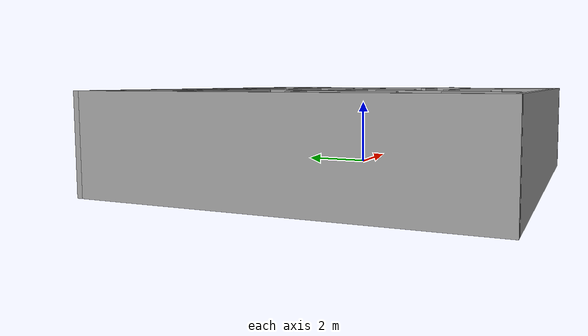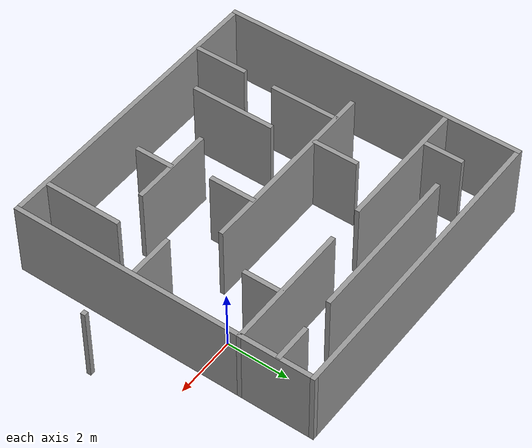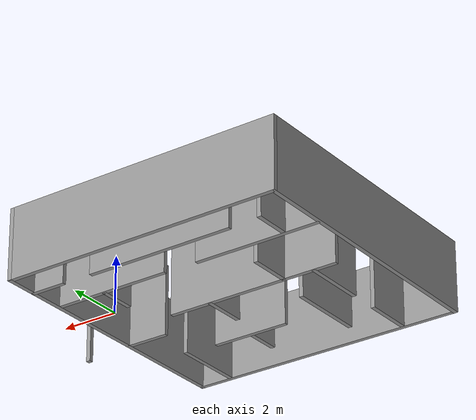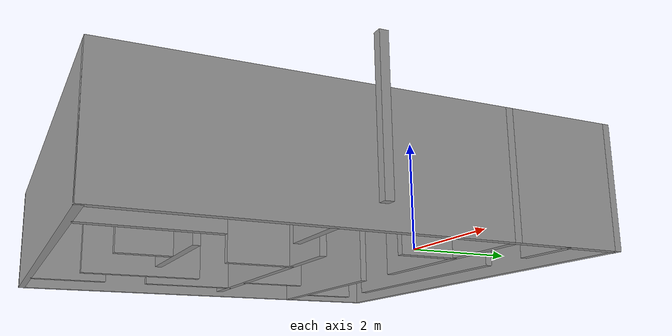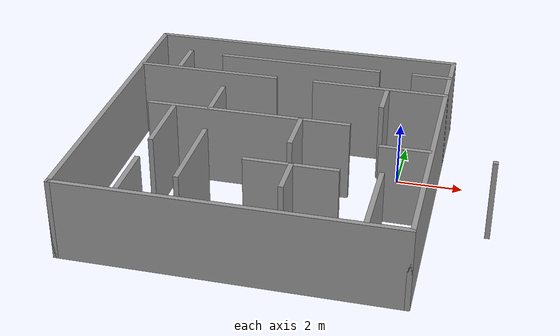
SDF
<?xml version='1.0'?>
<sdf version='1.6'>
  <model name='laberint'>
    <pose frame=''>-2.86364 -1.2706 0 0 -0 0</pose>
    <link name='Wall_15'>
      <collision name='Wall_15_Collision'>
        <geometry>
          <box>
            <size>0.15 0.15 2.5</size>
          </box>
        </geometry>
        <pose frame=''>0 0 1.25 0 -0 0</pose>
      </collision>
      <visual name='Wall_15_Visual'>
        <pose frame=''>0 0 1.25 0 -0 0</pose>
        <geometry>
          <box>
            <size>0.15 0.15 2.5</size>
          </box>
        </geometry>
        <material>
          <script>
            <uri>file://media/materials/scripts/gazebo.material</uri>
            <name>Gazebo/Grey</name>
          </script>
          <ambient>1 1 1 1</ambient>
        </material>
      </visual>
      <pose frame=''>5.81214 -1.10128 0 0 -0 0</pose>
    </link>
    <link name='Wall_17'>
      <collision name='Wall_17_Collision'>
        <geometry>
          <box>
            <size>2.5 0.15 2.5</size>
          </box>
        </geometry>
        <pose frame=''>0 0 1.25 0 -0 0</pose>
      </collision>
      <visual name='Wall_17_Visual'>
        <pose frame=''>0 0 1.25 0 -0 0</pose>
        <geometry>
          <box>
            <size>2.5 0.15 2.5</size>
          </box>
        </geometry>
        <material>
          <script>
            <uri>file://media/materials/scripts/gazebo.material</uri>
            <name>Gazebo/Grey</name>
          </script>
          <ambient>1 1 1 1</ambient>
        </material>
      </visual>
      <pose frame=''>2.84489 -3.62224 0 0 0 -1.5708</pose>
    </link>
    <link name='Wall_19'>
      <collision name='Wall_19_Collision'>
        <geometry>
          <box>
            <size>1.5 0.15 2.5</size>
          </box>
        </geometry>
        <pose frame=''>0 0 1.25 0 -0 0</pose>
      </collision>
      <visual name='Wall_19_Visual'>
        <pose frame=''>0 0 1.25 0 -0 0</pose>
        <geometry>
          <box>
            <size>1.5 0.15 2.5</size>
          </box>
        </geometry>
        <material>
          <script>
            <uri>file://media/materials/scripts/gazebo.material</uri>
            <name>Gazebo/Grey</name>
          </script>
          <ambient>1 1 1 1</ambient>
        </material>
      </visual>
      <pose frame=''>3.27726 -0.93979 0 0 -0 3.14159</pose>
    </link>
    <link name='Wall_22'>
      <collision name='Wall_22_Collision'>
        <geometry>
          <box>
            <size>10 0.15 2.5</size>
          </box>
        </geometry>
        <pose frame=''>0 0 1.25 0 -0 0</pose>
      </collision>
      <visual name='Wall_22_Visual'>
        <pose frame=''>0 0 1.25 0 -0 0</pose>
        <geometry>
          <box>
            <size>10 0.15 2.5</size>
          </box>
        </geometry>
        <material>
          <script>
            <uri>file://media/materials/scripts/gazebo.material</uri>
            <name>Gazebo/Grey</name>
          </script>
          <ambient>1 1 1 1</ambient>
        </material>
      </visual>
      <pose frame=''>-5.81214 0 0 0 0 -1.5708</pose>
    </link>
    <link name='Wall_23'>
      <collision name='Wall_23_Collision'>
        <geometry>
          <box>
            <size>10 0.15 2.5</size>
          </box>
        </geometry>
        <pose frame=''>0 0 1.25 0 -0 0</pose>
      </collision>
      <visual name='Wall_23_Visual'>
        <pose frame=''>0 0 1.25 0 -0 0</pose>
        <geometry>
          <box>
            <size>10 0.15 2.5</size>
          </box>
        </geometry>
        <material>
          <script>
            <uri>file://media/materials/scripts/gazebo.material</uri>
            <name>Gazebo/Grey</name>
          </script>
          <ambient>1 1 1 1</ambient>
        </material>
      </visual>
      <pose frame=''>-0.887143 -4.925 0 0 -0 0</pose>
    </link>
    <link name='Wall_24'>
      <collision name='Wall_24_Collision'>
        <geometry>
          <box>
            <size>10 0.15 2.5</size>
          </box>
        </geometry>
        <pose frame=''>0 0 1.25 0 -0 0</pose>
      </collision>
      <visual name='Wall_24_Visual'>
        <pose frame=''>0 0 1.25 0 -0 0</pose>
        <geometry>
          <box>
            <size>10 0.15 2.5</size>
          </box>
        </geometry>
        <material>
          <script>
            <uri>file://media/materials/scripts/gazebo.material</uri>
            <name>Gazebo/Grey</name>
          </script>
          <ambient>1 1 1 1</ambient>
        </material>
      </visual>
      <pose frame=''>4.03786 0 0 0 -0 1.5708</pose>
    </link>
    <link name='Wall_25'>
      <collision name='Wall_25_Collision'>
        <geometry>
          <box>
            <size>10 0.15 2.5</size>
          </box>
        </geometry>
        <pose frame=''>0 0 1.25 0 -0 0</pose>
      </collision>
      <visual name='Wall_25_Visual'>
        <pose frame=''>0 0 1.25 0 -0 0</pose>
        <geometry>
          <box>
            <size>10 0.15 2.5</size>
          </box>
        </geometry>
        <material>
          <script>
            <uri>file://media/materials/scripts/gazebo.material</uri>
            <name>Gazebo/Grey</name>
          </script>
          <ambient>1 1 1 1</ambient>
        </material>
      </visual>
      <pose frame=''>-0.887143 4.925 0 0 -0 3.14159</pose>
    </link>
    <link name='Wall_28'>
      <collision name='Wall_28_Collision'>
        <geometry>
          <box>
            <size>2.25 0.15 2.5</size>
          </box>
        </geometry>
        <pose frame=''>0 0 1.25 0 -0 0</pose>
      </collision>
      <visual name='Wall_28_Visual'>
        <pose frame=''>0 0 1.25 0 -0 0</pose>
        <geometry>
          <box>
            <size>2.25 0.15 2.5</size>
          </box>
        </geometry>
        <material>
          <script>
            <uri>file://media/materials/scripts/gazebo.material</uri>
            <name>Gazebo/Grey</name>
          </script>
          <ambient>1 1 1 1</ambient>
        </material>
      </visual>
      <pose frame=''>-3.88496 -1.01944 0 0 0 -1.5708</pose>
    </link>
    <link name='Wall_30'>
      <collision name='Wall_30_Collision'>
        <geometry>
          <box>
            <size>1.75 0.15 2.5</size>
          </box>
        </geometry>
        <pose frame=''>0 0 1.25 0 -0 0</pose>
      </collision>
      <visual name='Wall_30_Visual'>
        <pose frame=''>0 0 1.25 0 -0 0</pose>
        <geometry>
          <box>
            <size>1.75 0.15 2.5</size>
          </box>
        </geometry>
        <material>
          <script>
            <uri>file://media/materials/scripts/gazebo.material</uri>
            <name>Gazebo/Grey</name>
          </script>
          <ambient>1 1 1 1</ambient>
        </material>
      </visual>
      <pose frame=''>-3.91555 -4.012 0 0 0 -1.5708</pose>
    </link>
    <link name='Wall_32'>
      <collision name='Wall_32_Collision'>
        <geometry>
          <box>
            <size>2.75 0.15 2.5</size>
          </box>
        </geometry>
        <pose frame=''>0 0 1.25 0 -0 0</pose>
      </collision>
      <visual name='Wall_32_Visual'>
        <pose frame=''>0 0 1.25 0 -0 0</pose>
        <geometry>
          <box>
            <size>2.75 0.15 2.5</size>
          </box>
        </geometry>
        <material>
          <script>
            <uri>file://media/materials/scripts/gazebo.material</uri>
            <name>Gazebo/Grey</name>
          </script>
          <ambient>1 1 1 1</ambient>
        </material>
      </visual>
      <pose frame=''>-2.53899 -2.55423 0 0 0 -1.5708</pose>
    </link>
    <link name='Wall_34'>
      <collision name='Wall_34_Collision'>
        <geometry>
          <box>
            <size>1.5 0.15 2.5</size>
          </box>
        </geometry>
        <pose frame=''>0 0 1.25 0 -0 0</pose>
      </collision>
      <visual name='Wall_34_Visual'>
        <pose frame=''>0 0 1.25 0 -0 0</pose>
        <geometry>
          <box>
            <size>1.5 0.15 2.5</size>
          </box>
        </geometry>
        <material>
          <script>
            <uri>file://media/materials/scripts/gazebo.material</uri>
            <name>Gazebo/Grey</name>
          </script>
          <ambient>1 1 1 1</ambient>
        </material>
      </visual>
      <pose frame=''>0.03059 -0.644436 0 0 0 -1.5708</pose>
    </link>
    <link name='Wall_36'>
      <collision name='Wall_36_Collision'>
        <geometry>
          <box>
            <size>4.5 0.15 2.5</size>
          </box>
        </geometry>
        <pose frame=''>0 0 1.25 0 -0 0</pose>
      </collision>
      <visual name='Wall_36_Visual'>
        <pose frame=''>0 0 1.25 0 -0 0</pose>
        <geometry>
          <box>
            <size>4.5 0.15 2.5</size>
          </box>
        </geometry>
        <material>
          <script>
            <uri>file://media/materials/scripts/gazebo.material</uri>
            <name>Gazebo/Grey</name>
          </script>
          <ambient>1 1 1 1</ambient>
        </material>
      </visual>
      <pose frame=''>-3.54537 2.56955 0 0 -0 0</pose>
    </link>
    <link name='Wall_38'>
      <collision name='Wall_38_Collision'>
        <geometry>
          <box>
            <size>4.25 0.15 2.5</size>
          </box>
        </geometry>
        <pose frame=''>0 0 1.25 0 -0 0</pose>
      </collision>
      <visual name='Wall_38_Visual'>
        <pose frame=''>0 0 1.25 0 -0 0</pose>
        <geometry>
          <box>
            <size>4.25 0.15 2.5</size>
          </box>
        </geometry>
        <material>
          <script>
            <uri>file://media/materials/scripts/gazebo.material</uri>
            <name>Gazebo/Grey</name>
          </script>
          <ambient>1 1 1 1</ambient>
        </material>
      </visual>
      <pose frame=''>1.98791 2.60014 0 0 -0 3.14159</pose>
    </link>
    <link name='Wall_40'>
      <collision name='Wall_40_Collision'>
        <geometry>
          <box>
            <size>1.5 0.15 2.5</size>
          </box>
        </geometry>
        <pose frame=''>0 0 1.25 0 -0 0</pose>
      </collision>
      <visual name='Wall_40_Visual'>
        <pose frame=''>0 0 1.25 0 -0 0</pose>
        <geometry>
          <box>
            <size>1.5 0.15 2.5</size>
          </box>
        </geometry>
        <material>
          <script>
            <uri>file://media/materials/scripts/gazebo.material</uri>
            <name>Gazebo/Grey</name>
          </script>
          <ambient>1 1 1 1</ambient>
        </material>
      </visual>
      <pose frame=''>-2.78371 0.823895 0 0 0 -1.5708</pose>
    </link>
    <link name='Wall_42'>
      <collision name='Wall_42_Collision'>
        <geometry>
          <box>
            <size>1.25 0.15 2.5</size>
          </box>
        </geometry>
        <pose frame=''>0 0 1.25 0 -0 0</pose>
      </collision>
      <visual name='Wall_42_Visual'>
        <pose frame=''>0 0 1.25 0 -0 0</pose>
        <geometry>
          <box>
            <size>1.25 0.15 2.5</size>
          </box>
        </geometry>
        <material>
          <script>
            <uri>file://media/materials/scripts/gazebo.material</uri>
            <name>Gazebo/Grey</name>
          </script>
          <ambient>1 1 1 1</ambient>
        </material>
      </visual>
      <pose frame=''>2.23309 1.98896 0 0 0 -1.5708</pose>
    </link>
    <link name='Wall_44'>
      <collision name='Wall_44_Collision'>
        <geometry>
          <box>
            <size>5.25 0.15 2.5</size>
          </box>
        </geometry>
        <pose frame=''>0 0 1.25 0 -0 0</pose>
      </collision>
      <visual name='Wall_44_Visual'>
        <pose frame=''>0 0 1.25 0 -0 0</pose>
        <geometry>
          <box>
            <size>5.25 0.15 2.5</size>
          </box>
        </geometry>
        <material>
          <script>
            <uri>file://media/materials/scripts/gazebo.material</uri>
            <name>Gazebo/Grey</name>
          </script>
          <ambient>1 1 1 1</ambient>
        </material>
      </visual>
      <pose frame=''>-0.814925 3.79316 0 0 -0 0</pose>
    </link>
    <link name='Wall_46'>
      <collision name='Wall_46_Collision'>
        <geometry>
          <box>
            <size>1.25 0.15 2.5</size>
          </box>
        </geometry>
        <pose frame=''>0 0 1.25 0 -0 0</pose>
      </collision>
      <visual name='Wall_46_Visual'>
        <pose frame=''>0 0 1.25 0 -0 0</pose>
        <geometry>
          <box>
            <size>1.25 0.15 2.5</size>
          </box>
        </geometry>
        <material>
          <script>
            <uri>file://media/materials/scripts/gazebo.material</uri>
            <name>Gazebo/Grey</name>
          </script>
          <ambient>1 1 1 1</ambient>
        </material>
      </visual>
      <pose frame=''>-4.55794 3.27375 0 0 0 -1.5708</pose>
    </link>
    <link name='Wall_48'>
      <collision name='Wall_48_Collision'>
        <geometry>
          <box>
            <size>1.25 0.15 2.5</size>
          </box>
        </geometry>
        <pose frame=''>0 0 1.25 0 -0 0</pose>
      </collision>
      <visual name='Wall_48_Visual'>
        <pose frame=''>0 0 1.25 0 -0 0</pose>
        <geometry>
          <box>
            <size>1.25 0.15 2.5</size>
          </box>
        </geometry>
        <material>
          <script>
            <uri>file://media/materials/scripts/gazebo.material</uri>
            <name>Gazebo/Grey</name>
          </script>
          <ambient>1 1 1 1</ambient>
        </material>
      </visual>
      <pose frame=''>3.45607 3.82375 0 0 -0 0</pose>
    </link>
    <link name='Wall_5'>
      <collision name='Wall_5_Collision'>
        <geometry>
          <box>
            <size>6.25 0.15 2.5</size>
          </box>
        </geometry>
        <pose frame=''>0 0 1.25 0 -0 0</pose>
      </collision>
      <visual name='Wall_5_Visual'>
        <pose frame=''>0 0 1.25 0 -0 0</pose>
        <geometry>
          <box>
            <size>6.25 0.15 2.5</size>
          </box>
        </geometry>
        <material>
          <script>
            <uri>file://media/materials/scripts/gazebo.material</uri>
            <name>Gazebo/Grey</name>
          </script>
          <ambient>1 1 1 1</ambient>
        </material>
      </visual>
      <pose frame=''>-1.59971 0.075 0 0 -0 0</pose>
    </link>
    <link name='Wall_50'>
      <collision name='Wall_50_Collision'>
        <geometry>
          <box>
            <size>1.25 0.15 2.5</size>
          </box>
        </geometry>
        <pose frame=''>0 0 1.25 0 -0 0</pose>
      </collision>
      <visual name='Wall_50_Visual'>
        <pose frame=''>0 0 1.25 0 -0 0</pose>
        <geometry>
          <box>
            <size>1.25 0.15 2.5</size>
          </box>
        </geometry>
        <material>
          <script>
            <uri>file://media/materials/scripts/gazebo.material</uri>
            <name>Gazebo/Grey</name>
          </script>
          <ambient>1 1 1 1</ambient>
        </material>
      </visual>
      <pose frame=''>0.336493 -3.11961 0 0 0 -1.5708</pose>
    </link>
    <link name='Wall_7'>
      <collision name='Wall_7_Collision'>
        <geometry>
          <box>
            <size>2.75 0.15 2.5</size>
          </box>
        </geometry>
        <pose frame=''>0 0 1.25 0 -0 0</pose>
      </collision>
      <visual name='Wall_7_Visual'>
        <pose frame=''>0 0 1.25 0 -0 0</pose>
        <geometry>
          <box>
            <size>2.75 0.15 2.5</size>
          </box>
        </geometry>
        <material>
          <script>
            <uri>file://media/materials/scripts/gazebo.material</uri>
            <name>Gazebo/Grey</name>
          </script>
          <ambient>1 1 1 1</ambient>
        </material>
      </visual>
      <pose frame=''>0.333643 -2.5294 0 0 -0 0</pose>
    </link>
    <static>1</static>
  </model>
</sdf>
